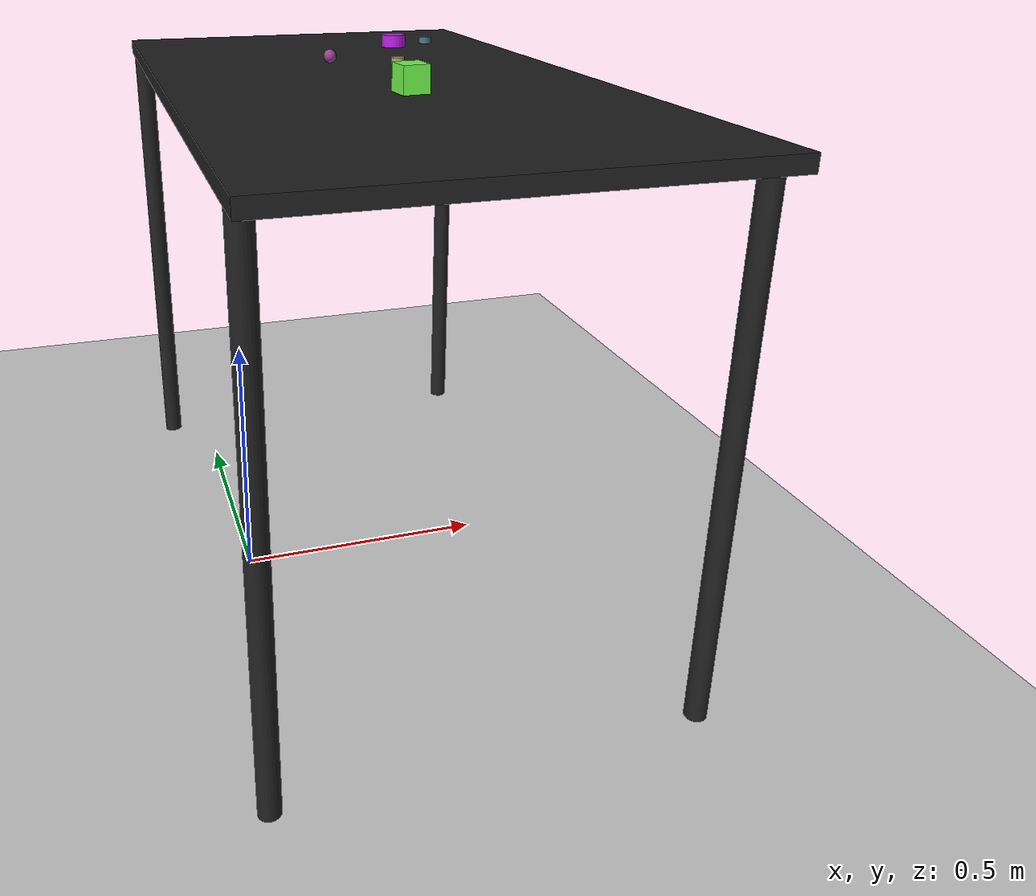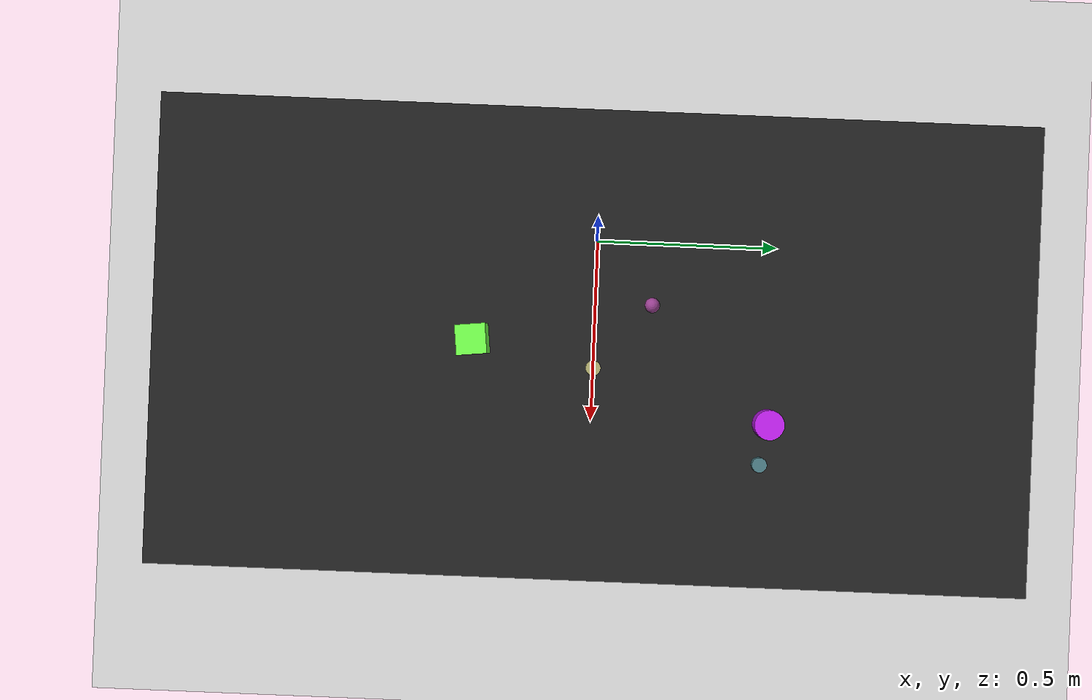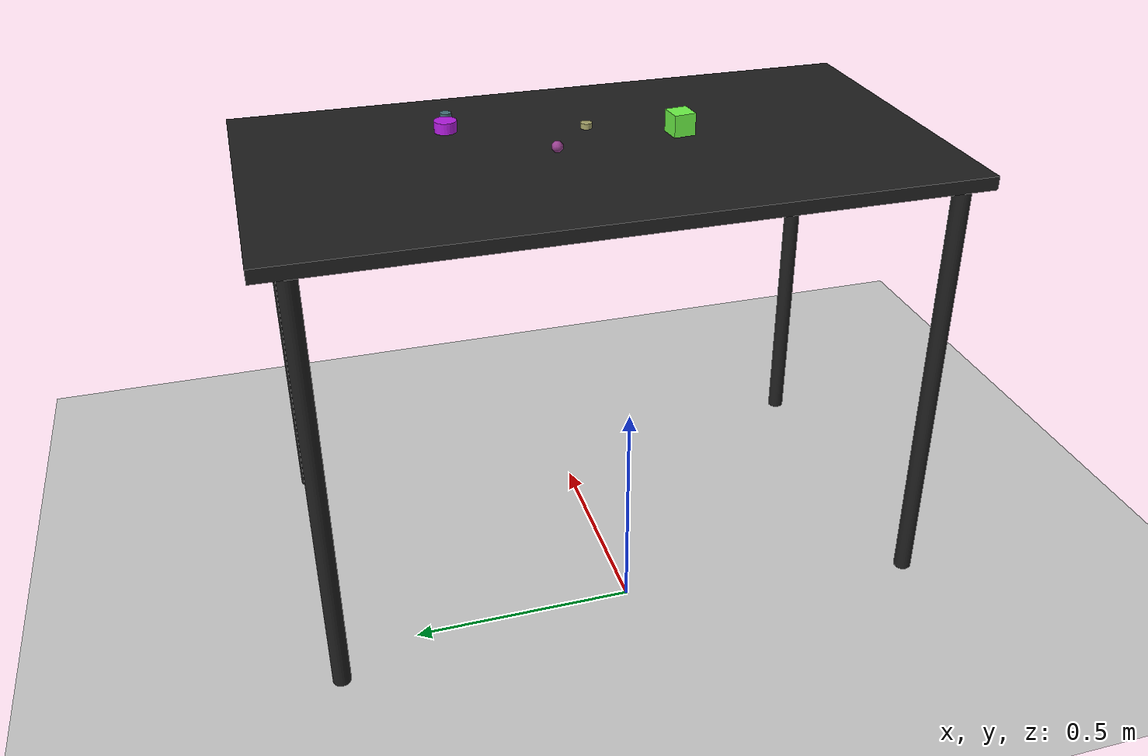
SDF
<?xml version="1.0" ?>
<sdf version="1.6">
  <world name="arm_world">
    <plugin filename="gz-sim-physics-system" name="gz::sim::systems::Physics">
      <engine>
        <filename>libgz-physics-bullet-featherstone-plugin.so</filename>
      </engine>
    </plugin>
    <plugin filename="gz-sim-user-commands-system" name="gz::sim::systems::UserCommands"/>
    <plugin filename="gz-sim-scene-broadcaster-system" name="gz::sim::systems::SceneBroadcaster"/>
    <plugin filename="gz-sim-sensors-system" name="gz::sim::systems::Sensors">
      <render_engine>ogre2</render_engine>
    </plugin>
    <gravity>0.0 0.0 -9.8</gravity>
    <scene>
      <shadows>false</shadows>
    </scene>
    <gui>
      <camera name="user_camera">
        <pose>0.75 -0.75 1.4 0 0.29 2.21</pose>
      </camera>
    </gui>
    <include>
      <uri>https://fuel.gazebosim.org/1.0/OpenRobotics/models/Sun</uri>
    </include>
    <model name="table">
      <static>true</static>
      <include>
        <uri>model://table</uri>
      </include>
      <pose>0.29 0 0 0 0 1.5708</pose>
    </model>
    <model name="ground_plane">
      <static>true</static>
      <link name="link">
        <collision name="collision">
          <geometry>
            <plane>
              <normal>0 0 1</normal>
            </plane>
          </geometry>
          <surface>
            <friction>
              <ode>
                <mu>1.0</mu>
                <mu2>1.0</mu2>
              </ode>
            </friction>
          </surface>
        </collision>
        <visual name="visual">
          <geometry>
            <plane>
              <normal>0 0 1</normal>
              <size>100 100</size>
            </plane>
          </geometry>
          <material>
            <ambient>0.8 0.8 0.8 1</ambient>
            <diffuse>0.8 0.8 0.8 1</diffuse>
            <specular>0.8 0.8 0.8 1</specular>
          </material>
        </visual>
      </link>
    </model>
    <model name="cylinder_m_0">
      <pose>0.41 0.295 1.05 0 0 1.28</pose>
      <link name="cylinder_m_0_link">
        <collision name="cylinder_m_0_collision">
          <geometry>
            <cylinder>
              <radius>0.025</radius>
              <length>0.025</length>
            </cylinder>
          </geometry>
        </collision>
        <visual name="cylinder_m_0_visual">
          <geometry>
            <cylinder>
              <radius>0.025</radius>
              <length>0.025</length>
            </cylinder>
          </geometry>
          <material>
            <ambient>0.71 0.11 0.88 1</ambient>
            <diffuse>0.71 0.11 0.88 1</diffuse>
          </material>
        </visual>
        <velocity_decay>
          <linear>1</linear>
          <angular>1</angular>
        </velocity_decay>
      </link>
    </model>
    <model name="sphere_s_1">
      <pose>0.22 0.095 1.05 0 0 4.63</pose>
      <link name="sphere_s_1_link">
        <collision name="sphere_s_1_collision">
          <geometry>
            <sphere>
              <radius>0.0125</radius>
            </sphere>
          </geometry>
        </collision>
        <visual name="sphere_s_1_visual">
          <geometry>
            <sphere>
              <radius>0.0125</radius>
            </sphere>
          </geometry>
          <material>
            <ambient>0.58 0.24 0.55 1</ambient>
            <diffuse>0.58 0.24 0.55 1</diffuse>
          </material>
        </visual>
        <velocity_decay>
          <linear>1</linear>
          <angular>1</angular>
        </velocity_decay>
      </link>
    </model>
    <model name="cube_m_2">
      <pose>0.288 -0.201 1.05 0 0 0.11</pose>
      <link name="cube_m_2_link">
        <collision name="cube_m_2_collision">
          <geometry>
            <box>
              <size>0.05 0.05 0.05</size>
            </box>
          </geometry>
        </collision>
        <visual name="cube_m_2_visual">
          <geometry>
            <box>
              <size>0.05 0.05 0.05</size>
            </box>
          </geometry>
          <material>
            <ambient>0.43 0.97 0.28 1</ambient>
            <diffuse>0.43 0.97 0.28 1</diffuse>
          </material>
        </visual>
        <velocity_decay>
          <linear>1</linear>
          <angular>1</angular>
        </velocity_decay>
      </link>
    </model>
    <model name="cylinder_s_3">
      <pose>0.477 0.282 1.05 0 0 0.1</pose>
      <link name="cylinder_s_3_link">
        <collision name="cylinder_s_3_collision">
          <geometry>
            <cylinder>
              <radius>0.0125</radius>
              <length>0.0125</length>
            </cylinder>
          </geometry>
        </collision>
        <visual name="cylinder_s_3_visual">
          <geometry>
            <cylinder>
              <radius>0.0125</radius>
              <length>0.0125</length>
            </cylinder>
          </geometry>
          <material>
            <ambient>0.27 0.45 0.48 1</ambient>
            <diffuse>0.27 0.45 0.48 1</diffuse>
          </material>
        </visual>
        <velocity_decay>
          <linear>1</linear>
          <angular>1</angular>
        </velocity_decay>
      </link>
    </model>
    <model name="cylinder_s_4">
      <pose>0.328 0.001 1.05 0 0 2.11</pose>
      <link name="cylinder_s_4_link">
        <collision name="cylinder_s_4_collision">
          <geometry>
            <cylinder>
              <radius>0.0125</radius>
              <length>0.0125</length>
            </cylinder>
          </geometry>
        </collision>
        <visual name="cylinder_s_4_visual">
          <geometry>
            <cylinder>
              <radius>0.0125</radius>
              <length>0.0125</length>
            </cylinder>
          </geometry>
          <material>
            <ambient>0.65 0.64 0.41 1</ambient>
            <diffuse>0.65 0.64 0.41 1</diffuse>
          </material>
        </visual>
        <velocity_decay>
          <linear>1</linear>
          <angular>1</angular>
        </velocity_decay>
      </link>
    </model>
  </world>
</sdf>

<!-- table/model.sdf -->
<sdf version="1.5">
  <model name="table">
    <static>true</static>
    <link name="link">
      <collision name="surface">
        <pose>0 0 1.0 0 0 0</pose>
        <geometry>
          <box>
            <size>1.5 0.8 0.03</size>
          </box>
        </geometry>
        <surface>
          <friction>
            <ode>
              <mu>0.6</mu>
              <mu2>0.6</mu2>
            </ode>
          </friction>
        </surface>
      </collision>
      <visual name="surface">
        <pose>0 0 1.0 0 0 0</pose>
        <geometry>
          <box>
            <size>1.5 0.8 0.03</size>
          </box>
        </geometry>
        <material>
          <script>
            <uri>file://media/materials/scripts/gazebo.material</uri>
            <name>Gazebo/Black</name>
          </script>
        </material>
      </visual>
      <collision name="front_left_leg">
        <pose>0.68 0.38 0.5 0 0 0</pose>
        <geometry>
          <cylinder>
            <radius>0.02</radius>
            <length>1.0</length>
          </cylinder>
        </geometry>
      </collision>
      <visual name="front_left_leg">
        <pose>0.68 0.38 0.5 0 0 0</pose>
        <geometry>
          <cylinder>
            <radius>0.02</radius>
            <length>1.0</length>
          </cylinder>
        </geometry>
        <material>
          <script>
            <uri>file://media/materials/scripts/gazebo.material</uri>
            <name>Gazebo/Black</name>
          </script>
        </material>
      </visual>
      <collision name="front_right_leg">
        <pose>0.68 -0.38 0.5 0 0 0</pose>
        <geometry>
          <cylinder>
            <radius>0.02</radius>
            <length>1.0</length>
          </cylinder>
        </geometry>
      </collision>
      <visual name="front_right_leg">
        <pose>0.68 -0.38 0.5 0 0 0</pose>
        <geometry>
          <cylinder>
            <radius>0.02</radius>
            <length>1.0</length>
          </cylinder>
        </geometry>
        <material>
          <script>
            <uri>file://media/materials/scripts/gazebo.material</uri>
            <name>Gazebo/Black</name>
          </script>
        </material>
      </visual>
      <collision name="back_right_leg">
        <pose>-0.68 -0.38 0.5 0 0 0</pose>
        <geometry>
          <cylinder>
            <radius>0.02</radius>
            <length>1.0</length>
          </cylinder>
        </geometry>
      </collision>
      <visual name="back_right_leg">
        <pose>-0.68 -0.38 0.5 0 0 0</pose>
        <geometry>
          <cylinder>
            <radius>0.02</radius>
            <length>1.0</length>
          </cylinder>
        </geometry>
        <material>
          <script>
            <uri>file://media/materials/scripts/gazebo.material</uri>
            <name>Gazebo/Black</name>
          </script>
        </material>
      </visual>
      <collision name="back_left_leg">
        <pose>-0.68 0.38 0.5 0 0 0</pose>
        <geometry>
          <cylinder>
            <radius>0.02</radius>
            <length>1.0</length>
          </cylinder>
        </geometry>
      </collision>
      <visual name="back_left_leg">
        <pose>-0.68 0.38 0.5 0 0 0</pose>
        <geometry>
          <cylinder>
            <radius>0.02</radius>
            <length>1.0</length>
          </cylinder>
        </geometry>
        <material>
          <script>
            <uri>file://media/materials/scripts/gazebo.material</uri>
            <name>Gazebo/Black</name>
          </script>
        </material>
      </visual>
    </link>
  </model>
</sdf>
